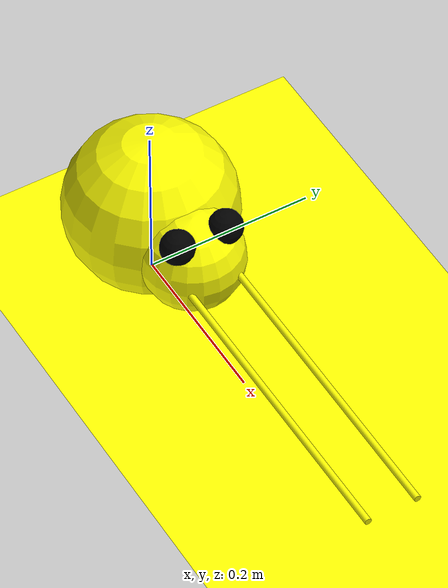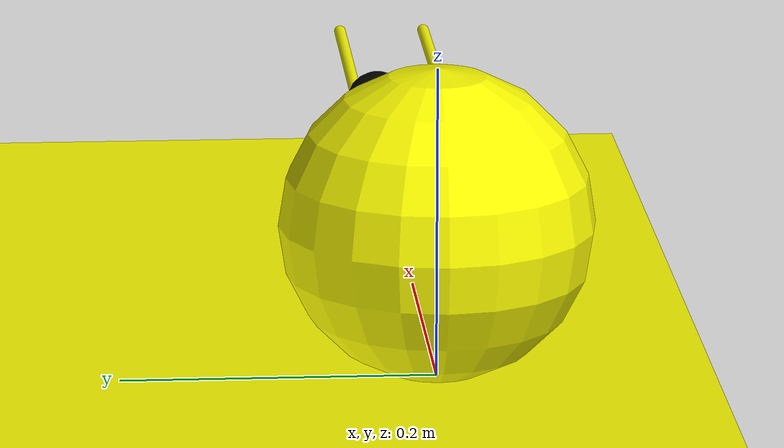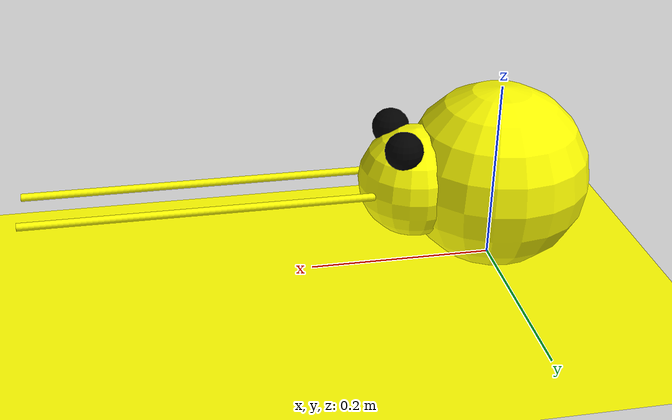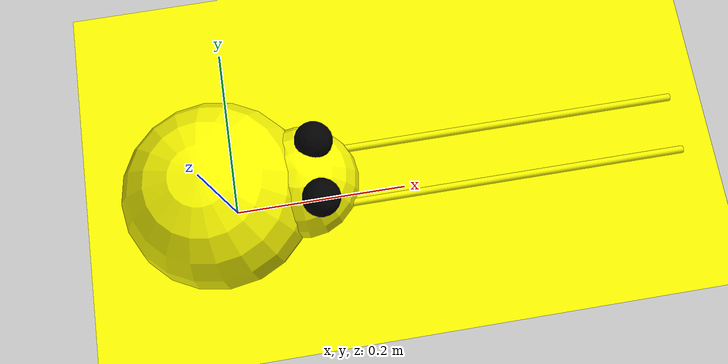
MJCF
<mujoco>
    <size njmax="3000" nconmax="1000"/>
    <option timestep="0.002"/>
    <default>
        <geom condim="6" density="1" rgba="1 1 0 1"/>
        <joint damping=".001"/>
        <motor ctrlrange="-1 1" ctrllimited="true" forcerange="-.05 .05" forcelimited="true"/>
        <velocity ctrlrange="-1 1" ctrllimited="true" forcerange="-.05 .05" forcelimited="true"/>
        <site size="0.032" type="sphere"/>
    </default>
    <worldbody>-
        <light name="toplight" pos="0 0 1"/>
        <geom name="floor" size="5 5 0.1" type="plane" condim="6"/>
        <body name="robot" pos="0 0 .1">
            <camera name="vision1" pos="0 0 .15" xyaxes="0 -1 0 .4 0 1" fovy="90"/>
            <joint type="slide" axis="1 0 0" name="x" damping="0.01"/>
            <joint type="slide" axis="0 1 0" name="y" damping="0.01"/>
            <joint type="hinge" axis="0 0 1" name="z" damping="0.005"/>
            <geom name="robot" type="sphere" size=".1" friction="1 0.01 0.01"/>
            <geom name="beehead" pos="0.09 0 0" size="0.06" type="sphere" density = "0"/>
            <geom name="beewhister1" type="cylinder"  size="0.004 .8" fromto="0.1 -.03 0 0.5 -.03 0"/>
            <geom name="beewhister2" type="cylinder"  size="0.004 .8" fromto="0.1 .03 0 0.5 .03 0"/>
            <geom name="beeeye1" type="sphere" size=".02" pos=".11 -.03 0.05" rgba="0 0 0 1"/>
            <geom name="beeeye2" type="sphere" size=".02" pos=".11 0.03 0.05" rgba = "0 0 0 1"/>
            <site name="robot" rgba="1 0 0 .1"/>
        </body>
    </worldbody>
    <sensor>
        <!-- Used for observation -->
        <accelerometer site="robot" name="accelerometer"/>
        <velocimeter site="robot" name="velocimeter"/>
        <gyro site="robot" name="gyro"/>
        <magnetometer site="robot" name="magnetometer"/>
        <!-- Used for intrinsic constraints -->
        <subtreecom body="robot" name="subtreecom"/>
        <subtreelinvel body="robot" name="subtreelinvel"/>
        <subtreeangmom body="robot" name="subtreeangmom"/>
    </sensor>
    <actuator>
        <motor gear="0.3 0 0 0 0 0" site="robot" name="x"/>
        <velocity gear="0.3" jointinparent="z" name="z"/>
    </actuator>
</mujoco>
